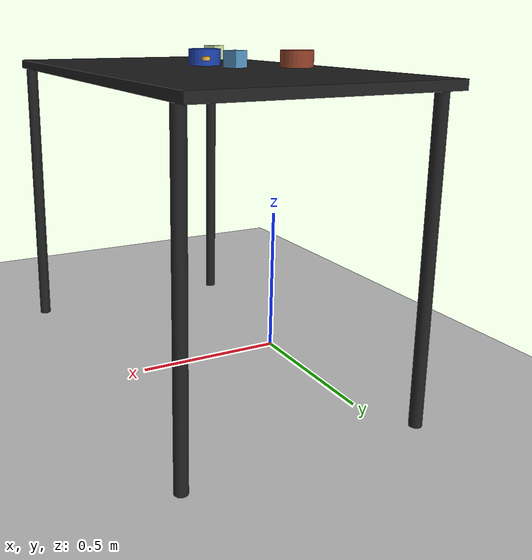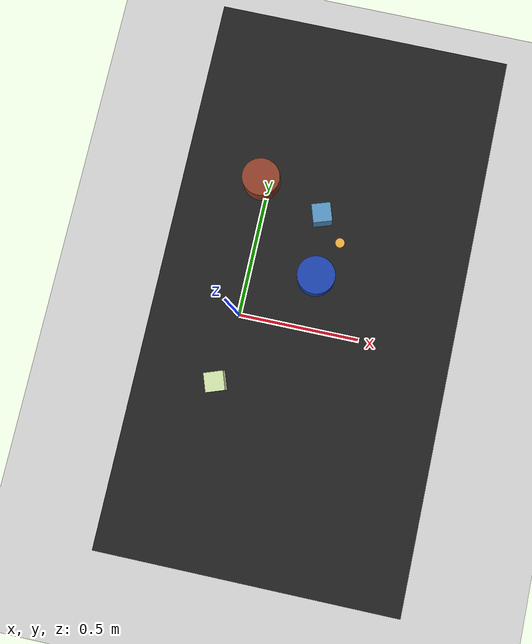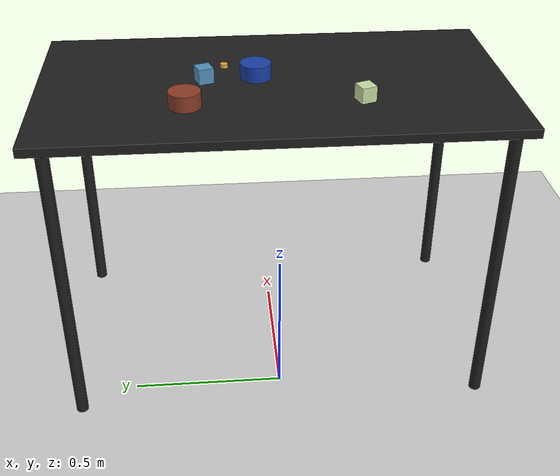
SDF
<?xml version="1.0" ?>
<sdf version="1.6">
  <world name="arm_world">
    <plugin filename="gz-sim-physics-system" name="gz::sim::systems::Physics">
      <engine>
        <filename>libgz-physics-bullet-featherstone-plugin.so</filename>
      </engine>
    </plugin>
    <plugin filename="gz-sim-user-commands-system" name="gz::sim::systems::UserCommands"/>
    <plugin filename="gz-sim-scene-broadcaster-system" name="gz::sim::systems::SceneBroadcaster"/>
    <plugin filename="gz-sim-sensors-system" name="gz::sim::systems::Sensors">
      <render_engine>ogre2</render_engine>
    </plugin>
    <gravity>0.0 0.0 -9.8</gravity>
    <scene>
      <shadows>false</shadows>
    </scene>
    <gui>
      <camera name="user_camera">
        <pose>0.75 -0.75 1.4 0 0.29 2.21</pose>
      </camera>
    </gui>
    <include>
      <uri>https://fuel.gazebosim.org/1.0/OpenRobotics/models/Sun</uri>
    </include>
    <model name="table">
      <static>true</static>
      <include>
        <uri>model://table</uri>
      </include>
      <pose>0.29 0 0 0 0 1.5708</pose>
    </model>
    <model name="ground_plane">
      <static>true</static>
      <link name="link">
        <collision name="collision">
          <geometry>
            <plane>
              <normal>0 0 1</normal>
            </plane>
          </geometry>
          <surface>
            <friction>
              <ode>
                <mu>1.0</mu>
                <mu2>1.0</mu2>
              </ode>
            </friction>
          </surface>
        </collision>
        <visual name="visual">
          <geometry>
            <plane>
              <normal>0 0 1</normal>
              <size>100 100</size>
            </plane>
          </geometry>
          <material>
            <ambient>0.8 0.8 0.8 1</ambient>
            <diffuse>0.8 0.8 0.8 1</diffuse>
            <specular>0.8 0.8 0.8 1</specular>
          </material>
        </visual>
      </link>
    </model>
    <model name="cylinder_l_0">
      <pose>0.3 0.054 1.05 0 0 0.24</pose>
      <link name="cylinder_l_0_link">
        <inertial>
          <mass>0.05</mass>
          <inertia>
            <ixx>2.04e-7</ixx>
            <iyy>2.04e-7</iyy>
            <izz>3.9e-8</izz>
            <ixy>0</ixy>
            <ixz>0</ixz>
            <iyz>0</iyz>
          </inertia>
        </inertial>
        <collision name="cylinder_l_0_collision">
          <geometry>
            <cylinder>
              <radius>0.05</radius>
              <length>0.05</length>
            </cylinder>
          </geometry>
          <surface>
            <friction>
              <ode>
                <mu>0.8</mu>
                <mu2>0.8</mu2>
                <fdir1>0 0 1</fdir1>
                <slip1>0.001</slip1>
                <slip2>0.001</slip2>
              </ode>
              <torsional>
                <coefficient>0.1</coefficient>
                <surface_radius>0.015</surface_radius>
                <use_patch_radius>true</use_patch_radius>
              </torsional>
            </friction>
            <contact>
              <ode>
                <kp>1e5</kp>
                <kd>10</kd>
                <max_vel>0.1</max_vel>
                <min_depth>0.001</min_depth>
                <soft_cfm>0.01</soft_cfm>
                <soft_erp>0.2</soft_erp>
              </ode>
            </contact>
            <bounce>
              <restitution_coefficient>0.2</restitution_coefficient>
              <threshold>0.01</threshold>
            </bounce>
          </surface>
        </collision>
        <visual name="cylinder_l_0_visual">
          <geometry>
            <cylinder>
              <radius>0.05</radius>
              <length>0.05</length>
            </cylinder>
          </geometry>
          <material>
            <ambient>0.1 0.25 0.66 1</ambient>
            <diffuse>0.1 0.25 0.66 1</diffuse>
          </material>
        </visual>
        <velocity_decay>
          <linear>1</linear>
          <angular>1</angular>
        </velocity_decay>
      </link>
    </model>
    <model name="cylinder_l_1">
      <pose>0.104 0.278 1.05 0 0 2.89</pose>
      <link name="cylinder_l_1_link">
        <inertial>
          <mass>0.05</mass>
          <inertia>
            <ixx>2.04e-7</ixx>
            <iyy>2.04e-7</iyy>
            <izz>3.9e-8</izz>
            <ixy>0</ixy>
            <ixz>0</ixz>
            <iyz>0</iyz>
          </inertia>
        </inertial>
        <collision name="cylinder_l_1_collision">
          <geometry>
            <cylinder>
              <radius>0.05</radius>
              <length>0.05</length>
            </cylinder>
          </geometry>
          <surface>
            <friction>
              <ode>
                <mu>0.8</mu>
                <mu2>0.8</mu2>
                <fdir1>0 0 1</fdir1>
                <slip1>0.001</slip1>
                <slip2>0.001</slip2>
              </ode>
              <torsional>
                <coefficient>0.1</coefficient>
                <surface_radius>0.015</surface_radius>
                <use_patch_radius>true</use_patch_radius>
              </torsional>
            </friction>
            <contact>
              <ode>
                <kp>1e5</kp>
                <kd>10</kd>
                <max_vel>0.1</max_vel>
                <min_depth>0.001</min_depth>
                <soft_cfm>0.01</soft_cfm>
                <soft_erp>0.2</soft_erp>
              </ode>
            </contact>
            <bounce>
              <restitution_coefficient>0.2</restitution_coefficient>
              <threshold>0.01</threshold>
            </bounce>
          </surface>
        </collision>
        <visual name="cylinder_l_1_visual">
          <geometry>
            <cylinder>
              <radius>0.05</radius>
              <length>0.05</length>
            </cylinder>
          </geometry>
          <material>
            <ambient>0.55 0.24 0.15 1</ambient>
            <diffuse>0.55 0.24 0.15 1</diffuse>
          </material>
        </visual>
        <velocity_decay>
          <linear>1</linear>
          <angular>1</angular>
        </velocity_decay>
      </link>
    </model>
    <model name="cube_m_2">
      <pose>0.105 -0.267 1.05 0 0 3.48</pose>
      <link name="cube_m_2_link">
        <inertial>
          <mass>0.05</mass>
          <inertia>
            <ixx>2.04e-7</ixx>
            <iyy>2.04e-7</iyy>
            <izz>3.9e-8</izz>
            <ixy>0</ixy>
            <ixz>0</ixz>
            <iyz>0</iyz>
          </inertia>
        </inertial>
        <collision name="cube_m_2_collision">
          <geometry>
            <box>
              <size>0.05 0.05 0.05</size>
            </box>
          </geometry>
          <surface>
            <friction>
              <ode>
                <mu>0.8</mu>
                <mu2>0.8</mu2>
                <fdir1>0 0 1</fdir1>
                <slip1>0.001</slip1>
                <slip2>0.001</slip2>
              </ode>
              <torsional>
                <coefficient>0.1</coefficient>
                <surface_radius>0.015</surface_radius>
                <use_patch_radius>true</use_patch_radius>
              </torsional>
            </friction>
            <contact>
              <ode>
                <kp>1e5</kp>
                <kd>10</kd>
                <max_vel>0.1</max_vel>
                <min_depth>0.001</min_depth>
                <soft_cfm>0.01</soft_cfm>
                <soft_erp>0.2</soft_erp>
              </ode>
            </contact>
            <bounce>
              <restitution_coefficient>0.2</restitution_coefficient>
              <threshold>0.01</threshold>
            </bounce>
          </surface>
        </collision>
        <visual name="cube_m_2_visual">
          <geometry>
            <box>
              <size>0.05 0.05 0.05</size>
            </box>
          </geometry>
          <material>
            <ambient>0.8 0.88 0.65 1</ambient>
            <diffuse>0.8 0.88 0.65 1</diffuse>
          </material>
        </visual>
        <velocity_decay>
          <linear>1</linear>
          <angular>1</angular>
        </velocity_decay>
      </link>
    </model>
    <model name="cube_m_3">
      <pose>0.28 0.218 1.05 0 0 0.32</pose>
      <link name="cube_m_3_link">
        <inertial>
          <mass>0.05</mass>
          <inertia>
            <ixx>2.04e-7</ixx>
            <iyy>2.04e-7</iyy>
            <izz>3.9e-8</izz>
            <ixy>0</ixy>
            <ixz>0</ixz>
            <iyz>0</iyz>
          </inertia>
        </inertial>
        <collision name="cube_m_3_collision">
          <geometry>
            <box>
              <size>0.05 0.05 0.05</size>
            </box>
          </geometry>
          <surface>
            <friction>
              <ode>
                <mu>0.8</mu>
                <mu2>0.8</mu2>
                <fdir1>0 0 1</fdir1>
                <slip1>0.001</slip1>
                <slip2>0.001</slip2>
              </ode>
              <torsional>
                <coefficient>0.1</coefficient>
                <surface_radius>0.015</surface_radius>
                <use_patch_radius>true</use_patch_radius>
              </torsional>
            </friction>
            <contact>
              <ode>
                <kp>1e5</kp>
                <kd>10</kd>
                <max_vel>0.1</max_vel>
                <min_depth>0.001</min_depth>
                <soft_cfm>0.01</soft_cfm>
                <soft_erp>0.2</soft_erp>
              </ode>
            </contact>
            <bounce>
              <restitution_coefficient>0.2</restitution_coefficient>
              <threshold>0.01</threshold>
            </bounce>
          </surface>
        </collision>
        <visual name="cube_m_3_visual">
          <geometry>
            <box>
              <size>0.05 0.05 0.05</size>
            </box>
          </geometry>
          <material>
            <ambient>0.33 0.57 0.75 1</ambient>
            <diffuse>0.33 0.57 0.75 1</diffuse>
          </material>
        </visual>
        <velocity_decay>
          <linear>1</linear>
          <angular>1</angular>
        </velocity_decay>
      </link>
    </model>
    <model name="cylinder_s_4">
      <pose>0.343 0.153 1.05 0 0 4.0</pose>
      <link name="cylinder_s_4_link">
        <inertial>
          <mass>0.05</mass>
          <inertia>
            <ixx>2.04e-7</ixx>
            <iyy>2.04e-7</iyy>
            <izz>3.9e-8</izz>
            <ixy>0</ixy>
            <ixz>0</ixz>
            <iyz>0</iyz>
          </inertia>
        </inertial>
        <collision name="cylinder_s_4_collision">
          <geometry>
            <cylinder>
              <radius>0.0125</radius>
              <length>0.0125</length>
            </cylinder>
          </geometry>
          <surface>
            <friction>
              <ode>
                <mu>0.8</mu>
                <mu2>0.8</mu2>
                <fdir1>0 0 1</fdir1>
                <slip1>0.001</slip1>
                <slip2>0.001</slip2>
              </ode>
              <torsional>
                <coefficient>0.1</coefficient>
                <surface_radius>0.015</surface_radius>
                <use_patch_radius>true</use_patch_radius>
              </torsional>
            </friction>
            <contact>
              <ode>
                <kp>1e5</kp>
                <kd>10</kd>
                <max_vel>0.1</max_vel>
                <min_depth>0.001</min_depth>
                <soft_cfm>0.01</soft_cfm>
                <soft_erp>0.2</soft_erp>
              </ode>
            </contact>
            <bounce>
              <restitution_coefficient>0.2</restitution_coefficient>
              <threshold>0.01</threshold>
            </bounce>
          </surface>
        </collision>
        <visual name="cylinder_s_4_visual">
          <geometry>
            <cylinder>
              <radius>0.0125</radius>
              <length>0.0125</length>
            </cylinder>
          </geometry>
          <material>
            <ambient>0.9 0.67 0.25 1</ambient>
            <diffuse>0.9 0.67 0.25 1</diffuse>
          </material>
        </visual>
        <velocity_decay>
          <linear>1</linear>
          <angular>1</angular>
        </velocity_decay>
      </link>
    </model>
  </world>
</sdf>

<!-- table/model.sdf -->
<sdf version="1.5">
  <model name="table">
    <static>true</static>
    <link name="link">
      <collision name="surface">
        <pose>0 0 1.0 0 0 0</pose>
        <geometry>
          <box>
            <size>1.5 0.8 0.03</size>
          </box>
        </geometry>
        <surface>
          <friction>
            <ode>
              <mu>0.6</mu>
              <mu2>0.6</mu2>
            </ode>
          </friction>
        </surface>
      </collision>
      <visual name="surface">
        <pose>0 0 1.0 0 0 0</pose>
        <geometry>
          <box>
            <size>1.5 0.8 0.03</size>
          </box>
        </geometry>
        <material>
          <script>
            <uri>file://media/materials/scripts/gazebo.material</uri>
            <name>Gazebo/Black</name>
          </script>
        </material>
      </visual>
      <collision name="front_left_leg">
        <pose>0.68 0.38 0.5 0 0 0</pose>
        <geometry>
          <cylinder>
            <radius>0.02</radius>
            <length>1.0</length>
          </cylinder>
        </geometry>
      </collision>
      <visual name="front_left_leg">
        <pose>0.68 0.38 0.5 0 0 0</pose>
        <geometry>
          <cylinder>
            <radius>0.02</radius>
            <length>1.0</length>
          </cylinder>
        </geometry>
        <material>
          <script>
            <uri>file://media/materials/scripts/gazebo.material</uri>
            <name>Gazebo/Black</name>
          </script>
        </material>
      </visual>
      <collision name="front_right_leg">
        <pose>0.68 -0.38 0.5 0 0 0</pose>
        <geometry>
          <cylinder>
            <radius>0.02</radius>
            <length>1.0</length>
          </cylinder>
        </geometry>
      </collision>
      <visual name="front_right_leg">
        <pose>0.68 -0.38 0.5 0 0 0</pose>
        <geometry>
          <cylinder>
            <radius>0.02</radius>
            <length>1.0</length>
          </cylinder>
        </geometry>
        <material>
          <script>
            <uri>file://media/materials/scripts/gazebo.material</uri>
            <name>Gazebo/Black</name>
          </script>
        </material>
      </visual>
      <collision name="back_right_leg">
        <pose>-0.68 -0.38 0.5 0 0 0</pose>
        <geometry>
          <cylinder>
            <radius>0.02</radius>
            <length>1.0</length>
          </cylinder>
        </geometry>
      </collision>
      <visual name="back_right_leg">
        <pose>-0.68 -0.38 0.5 0 0 0</pose>
        <geometry>
          <cylinder>
            <radius>0.02</radius>
            <length>1.0</length>
          </cylinder>
        </geometry>
        <material>
          <script>
            <uri>file://media/materials/scripts/gazebo.material</uri>
            <name>Gazebo/Black</name>
          </script>
        </material>
      </visual>
      <collision name="back_left_leg">
        <pose>-0.68 0.38 0.5 0 0 0</pose>
        <geometry>
          <cylinder>
            <radius>0.02</radius>
            <length>1.0</length>
          </cylinder>
        </geometry>
      </collision>
      <visual name="back_left_leg">
        <pose>-0.68 0.38 0.5 0 0 0</pose>
        <geometry>
          <cylinder>
            <radius>0.02</radius>
            <length>1.0</length>
          </cylinder>
        </geometry>
        <material>
          <script>
            <uri>file://media/materials/scripts/gazebo.material</uri>
            <name>Gazebo/Black</name>
          </script>
        </material>
      </visual>
    </link>
  </model>
</sdf>
